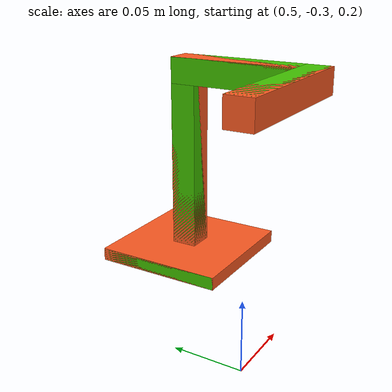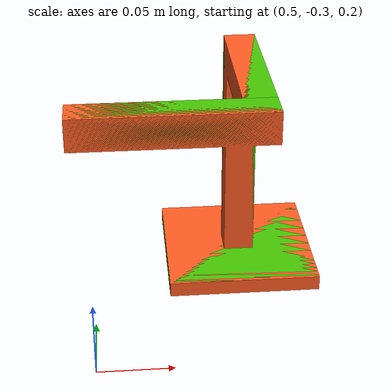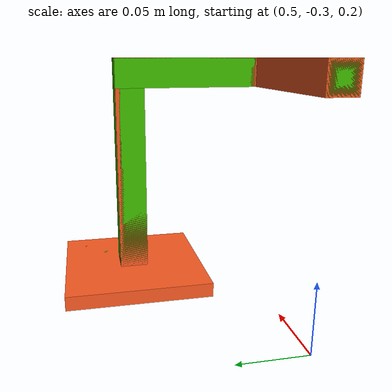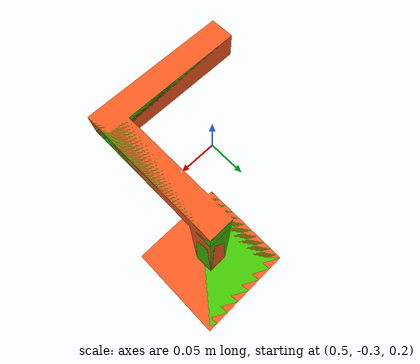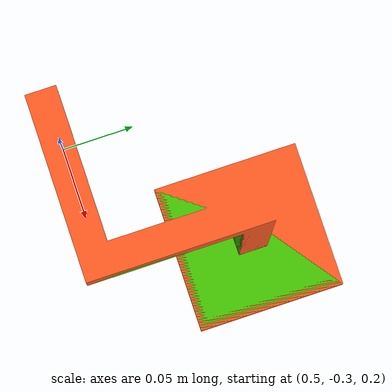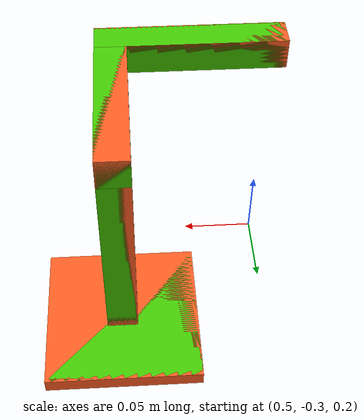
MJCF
<mujoco model="wire_base">

    <asset>
        <material name="orange_mat" rgba="1 0.356 0.133 1"/>
        <mesh name="my_mesh" file="/path/to/Intervention_IL_AR/intervene_base/mujoco_scenes/wire_and_loop_assets/Basic_Model_Body.stl" scale="0.001 0.001 0.001"/>
    </asset>

    <default>
        <default class="wire_base_collision">
            <geom type="box" contype="1" conaffinity="1" rgba="0 1 0 0.7"/>
        </default>
    </default>

    <worldbody>
        <body name="object" pos="0.6 -0.2 0.22">
            <geom type="mesh" mesh="my_mesh" material="orange_mat"/>

            <!-- base -->
            <geom name="body_col_base" class="wire_base_collision"
                pos="0 0 0.005"
                size="0.05 0.05 0.005"/>

            <!-- stem -->
            <geom name="body_col_stem" class="wire_base_collision"
                pos="0 0 0.075"
                size="0.01 0.01 0.065"/>

            <!-- top horizontal arm -->
            <geom name="body_col_top_x" class="wire_base_collision"
                pos="-0.05 -0.1 0.15"
                size="0.06 0.01 0.01"/>

            <!-- top vertical arm -->
            <geom name="body_col_top_y" class="wire_base_collision"
                pos="0.0 -0.04 0.15"
                size="0.01 0.05 0.01"/>

        </body>
    </worldbody>
</mujoco>
